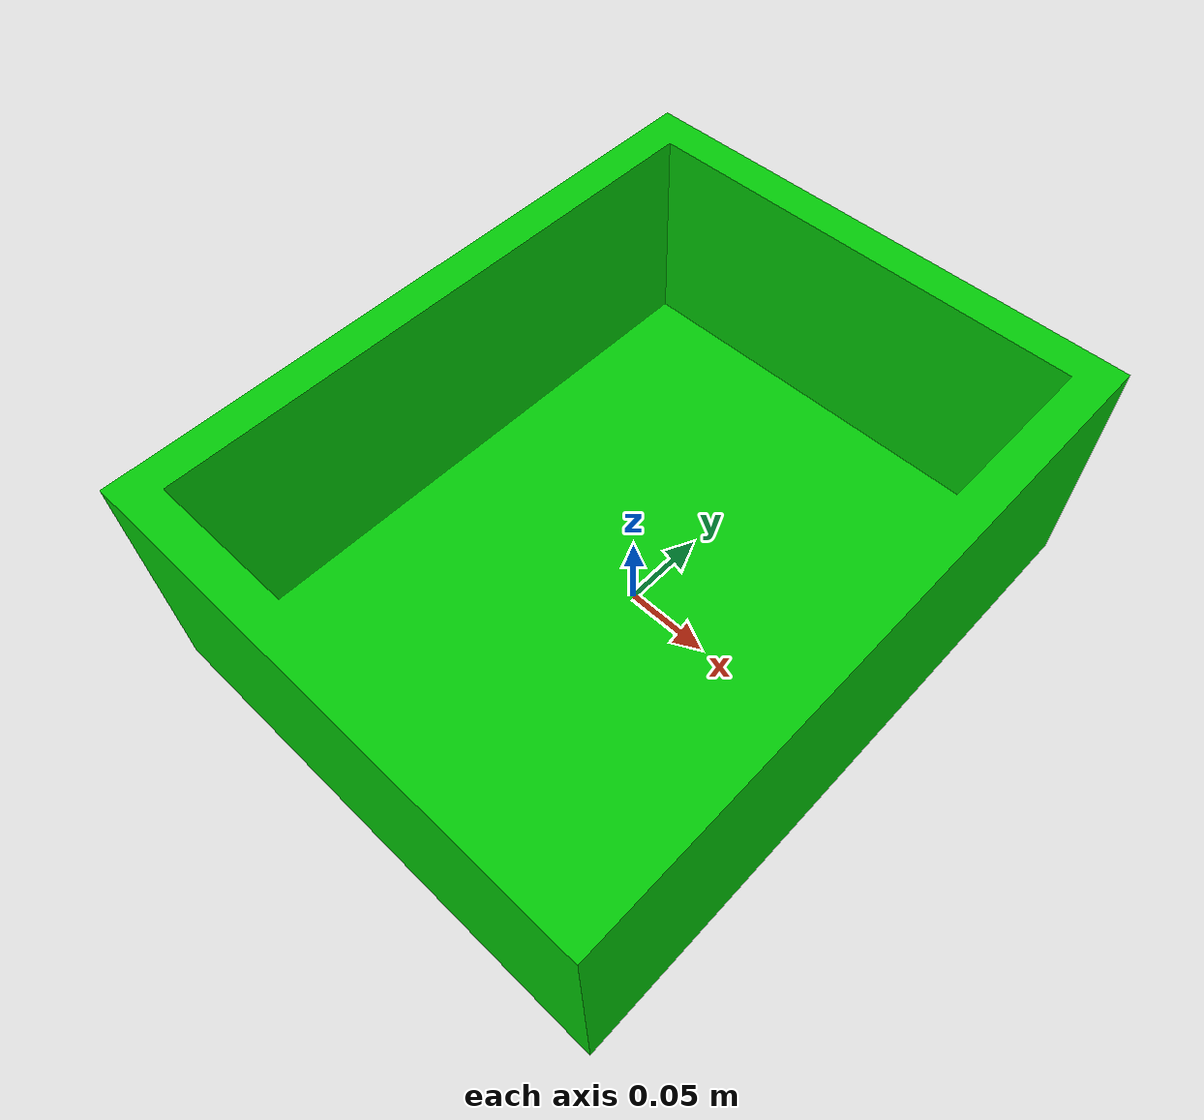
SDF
<?xml version="1.0"?>
<sdf version="1.6">
    <model name="denso_box">
        <pose>0 0 0 0 0 0</pose>
        <static>true</static>
        <link name="denso_box">
            <inertial>
                <mass>0.2</mass>
                <inertia>
                    <ixx>0.0005</ixx>
                    <ixy>0.0</ixy>
                    <ixz>0.0</ixz>
                    <iyy>0.0005</iyy>
                    <iyz>0.0</iyz>
                    <izz>0.0005</izz>
                </inertia>
            </inertial>
            <collision name="collr">
                <geometry>
                    <mesh>
                        <uri>model://denso_box/denso_box.dae</uri>
                    </mesh>
                </geometry>
            </collision>
            <visual name="visual">
                <geometry>
                    <mesh>
                        <uri>model://denso_box/denso_box.dae</uri>
                    </mesh>
                </geometry>
            </visual>
        </link>
    </model>
</sdf>
